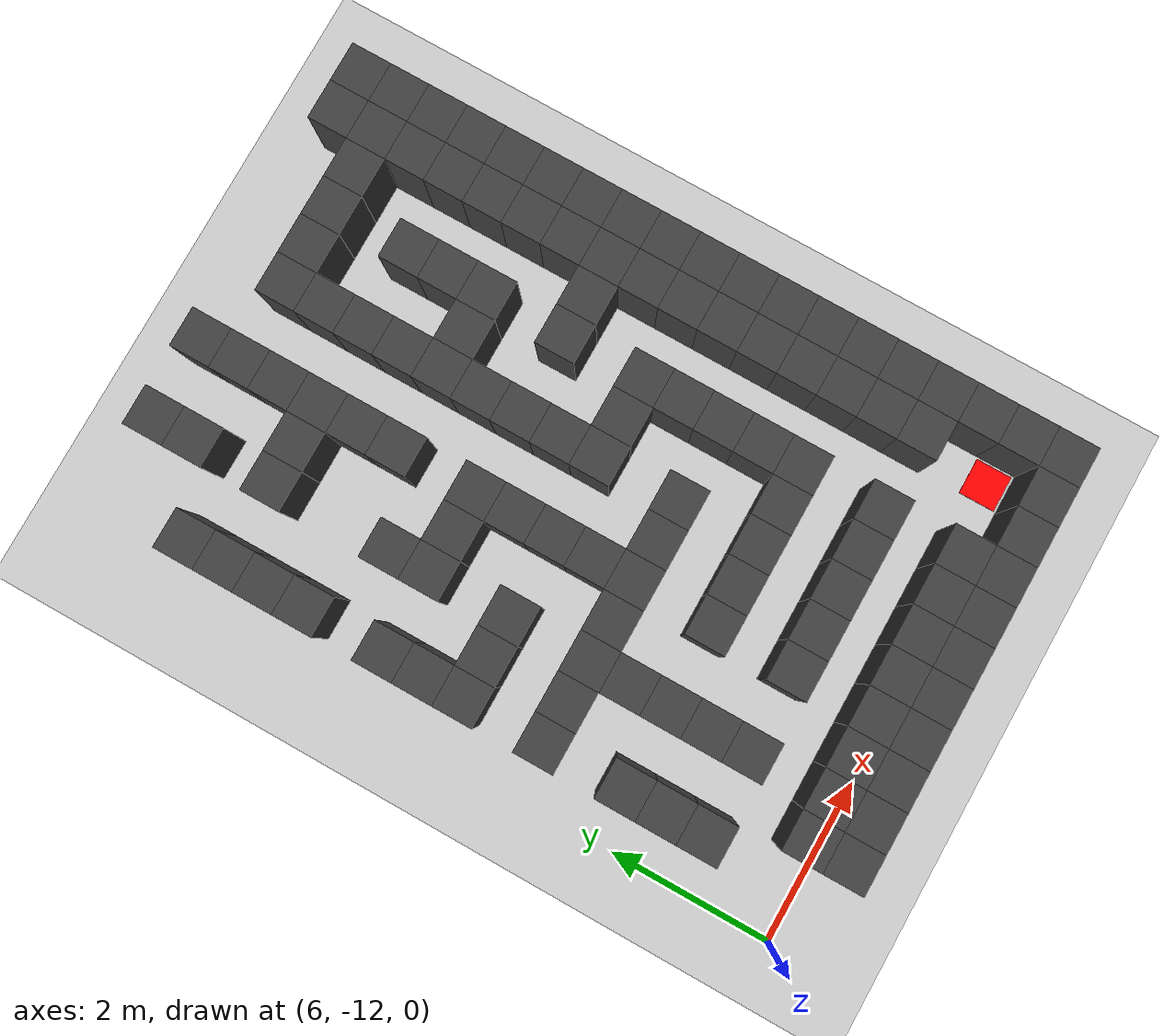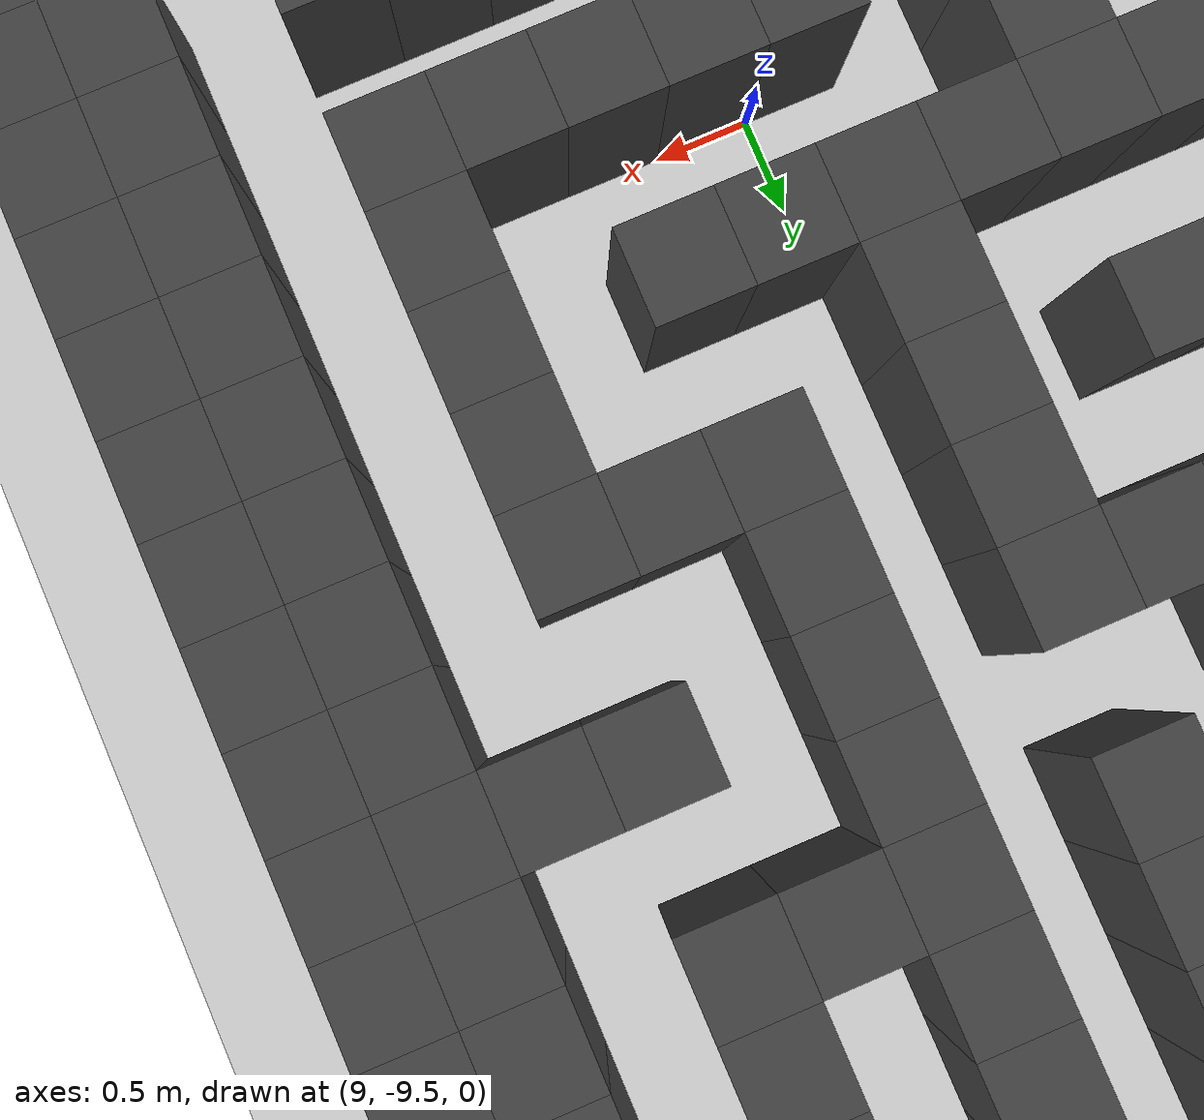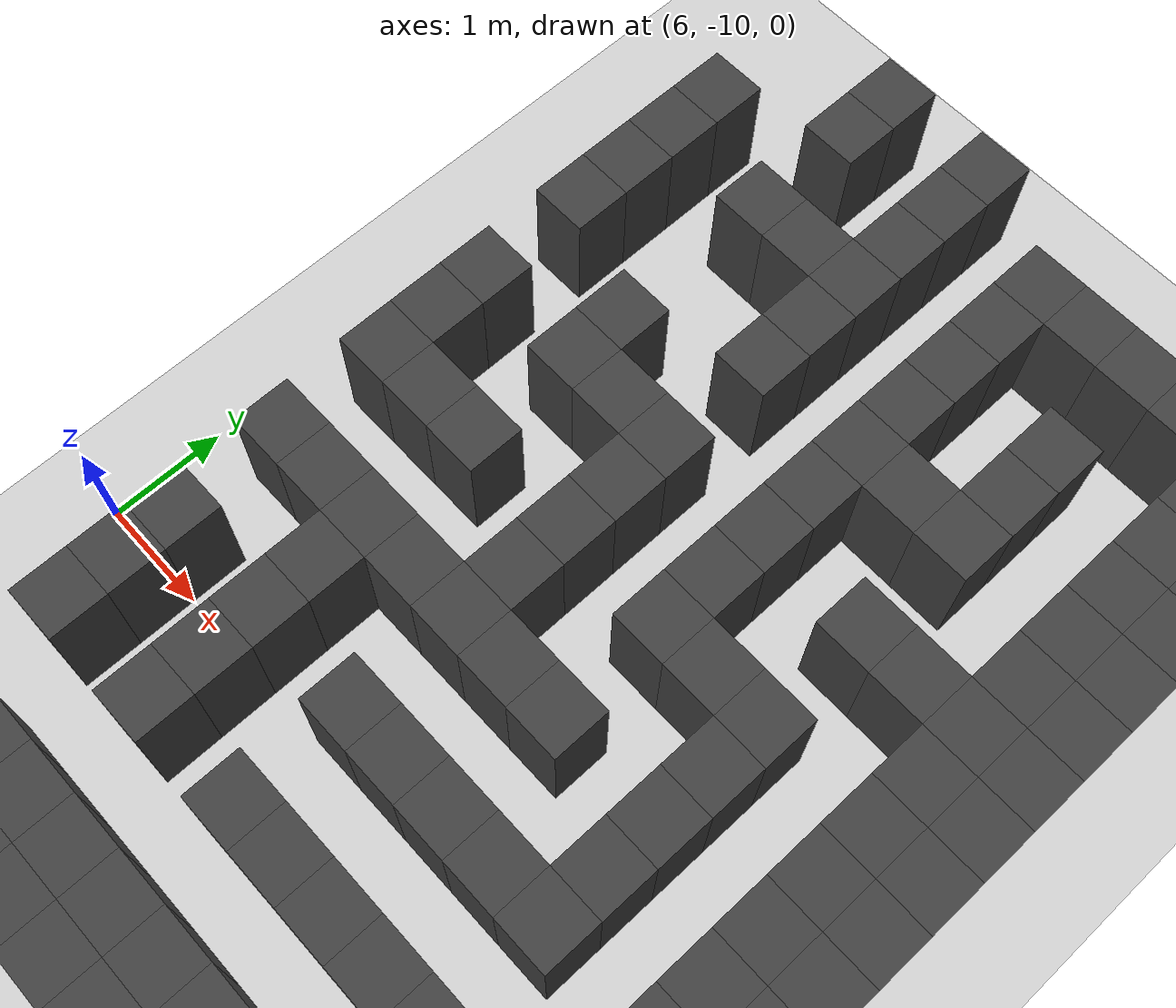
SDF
<sdf version="1.7">
 <world name="map_17508">
  <model name="ground_plane">
   <static>true</static>
   <link name="link">
    <collision name="collision">
     <geometry><plane><normal>0 0 1</normal><size>200 200</size></plane></geometry>
    </collision>
    <visual name="visual">
     <geometry><plane><normal>0 0 1</normal><size>200 200</size></plane></geometry>
     <material><ambient>0.8 0.8 0.8 1</ambient><diffuse>0.8 0.8 0.8 1</diffuse></material>
    </visual>
   </link>
  </model>
  <model name="maze_environment">
   <static>true</static>
   <link name="wall_781">
    <pose>7.750 -3.250 0.500 0 0 0</pose>
    <collision name="col"><geometry><box><size>0.5 0.5 1.0</size></box></geometry></collision>
    <visual name="vis">
     <geometry><box><size>0.5 0.5 1.0</size></box></geometry>
     <material><ambient>0.15 0.15 0.15 1</ambient><diffuse>0.25 0.25 0.25 1</diffuse></material>
    </visual>
   </link>
   <link name="wall_782">
    <pose>8.750 -3.250 0.500 0 0 0</pose>
    <collision name="col"><geometry><box><size>0.5 0.5 1.0</size></box></geometry></collision>
    <visual name="vis">
     <geometry><box><size>0.5 0.5 1.0</size></box></geometry>
     <material><ambient>0.15 0.15 0.15 1</ambient><diffuse>0.25 0.25 0.25 1</diffuse></material>
    </visual>
   </link>
   <link name="wall_783">
    <pose>11.750 -3.250 0.500 0 0 0</pose>
    <collision name="col"><geometry><box><size>0.5 0.5 1.0</size></box></geometry></collision>
    <visual name="vis">
     <geometry><box><size>0.5 0.5 1.0</size></box></geometry>
     <material><ambient>0.15 0.15 0.15 1</ambient><diffuse>0.25 0.25 0.25 1</diffuse></material>
    </visual>
   </link>
   <link name="wall_784">
    <pose>12.250 -3.250 0.500 0 0 0</pose>
    <collision name="col"><geometry><box><size>0.5 0.5 1.0</size></box></geometry></collision>
    <visual name="vis">
     <geometry><box><size>0.5 0.5 1.0</size></box></geometry>
     <material><ambient>0.15 0.15 0.15 1</ambient><diffuse>0.25 0.25 0.25 1</diffuse></material>
    </visual>
   </link>
   <link name="wall_809">
    <pose>7.750 -3.750 0.500 0 0 0</pose>
    <collision name="col"><geometry><box><size>0.5 0.5 1.0</size></box></geometry></collision>
    <visual name="vis">
     <geometry><box><size>0.5 0.5 1.0</size></box></geometry>
     <material><ambient>0.15 0.15 0.15 1</ambient><diffuse>0.25 0.25 0.25 1</diffuse></material>
    </visual>
   </link>
   <link name="wall_810">
    <pose>8.750 -3.750 0.500 0 0 0</pose>
    <collision name="col"><geometry><box><size>0.5 0.5 1.0</size></box></geometry></collision>
    <visual name="vis">
     <geometry><box><size>0.5 0.5 1.0</size></box></geometry>
     <material><ambient>0.15 0.15 0.15 1</ambient><diffuse>0.25 0.25 0.25 1</diffuse></material>
    </visual>
   </link>
   <link name="wall_811">
    <pose>9.750 -3.750 0.500 0 0 0</pose>
    <collision name="col"><geometry><box><size>0.5 0.5 1.0</size></box></geometry></collision>
    <visual name="vis">
     <geometry><box><size>0.5 0.5 1.0</size></box></geometry>
     <material><ambient>0.15 0.15 0.15 1</ambient><diffuse>0.25 0.25 0.25 1</diffuse></material>
    </visual>
   </link>
   <link name="wall_812">
    <pose>10.250 -3.750 0.500 0 0 0</pose>
    <collision name="col"><geometry><box><size>0.5 0.5 1.0</size></box></geometry></collision>
    <visual name="vis">
     <geometry><box><size>0.5 0.5 1.0</size></box></geometry>
     <material><ambient>0.15 0.15 0.15 1</ambient><diffuse>0.25 0.25 0.25 1</diffuse></material>
    </visual>
   </link>
   <link name="wall_813">
    <pose>10.750 -3.750 0.500 0 0 0</pose>
    <collision name="col"><geometry><box><size>0.5 0.5 1.0</size></box></geometry></collision>
    <visual name="vis">
     <geometry><box><size>0.5 0.5 1.0</size></box></geometry>
     <material><ambient>0.15 0.15 0.15 1</ambient><diffuse>0.25 0.25 0.25 1</diffuse></material>
    </visual>
   </link>
   <link name="wall_814">
    <pose>11.250 -3.750 0.500 0 0 0</pose>
    <collision name="col"><geometry><box><size>0.5 0.5 1.0</size></box></geometry></collision>
    <visual name="vis">
     <geometry><box><size>0.5 0.5 1.0</size></box></geometry>
     <material><ambient>0.15 0.15 0.15 1</ambient><diffuse>0.25 0.25 0.25 1</diffuse></material>
    </visual>
   </link>
   <link name="wall_815">
    <pose>11.750 -3.750 0.500 0 0 0</pose>
    <collision name="col"><geometry><box><size>0.5 0.5 1.0</size></box></geometry></collision>
    <visual name="vis">
     <geometry><box><size>0.5 0.5 1.0</size></box></geometry>
     <material><ambient>0.15 0.15 0.15 1</ambient><diffuse>0.25 0.25 0.25 1</diffuse></material>
    </visual>
   </link>
   <link name="wall_816">
    <pose>12.250 -3.750 0.500 0 0 0</pose>
    <collision name="col"><geometry><box><size>0.5 0.5 1.0</size></box></geometry></collision>
    <visual name="vis">
     <geometry><box><size>0.5 0.5 1.0</size></box></geometry>
     <material><ambient>0.15 0.15 0.15 1</ambient><diffuse>0.25 0.25 0.25 1</diffuse></material>
    </visual>
   </link>
   <link name="wall_828">
    <pose>6.750 -4.250 0.500 0 0 0</pose>
    <collision name="col"><geometry><box><size>0.5 0.5 1.0</size></box></geometry></collision>
    <visual name="vis">
     <geometry><box><size>0.5 0.5 1.0</size></box></geometry>
     <material><ambient>0.15 0.15 0.15 1</ambient><diffuse>0.25 0.25 0.25 1</diffuse></material>
    </visual>
   </link>
   <link name="wall_829">
    <pose>8.750 -4.250 0.500 0 0 0</pose>
    <collision name="col"><geometry><box><size>0.5 0.5 1.0</size></box></geometry></collision>
    <visual name="vis">
     <geometry><box><size>0.5 0.5 1.0</size></box></geometry>
     <material><ambient>0.15 0.15 0.15 1</ambient><diffuse>0.25 0.25 0.25 1</diffuse></material>
    </visual>
   </link>
   <link name="wall_830">
    <pose>9.750 -4.250 0.500 0 0 0</pose>
    <collision name="col"><geometry><box><size>0.5 0.5 1.0</size></box></geometry></collision>
    <visual name="vis">
     <geometry><box><size>0.5 0.5 1.0</size></box></geometry>
     <material><ambient>0.15 0.15 0.15 1</ambient><diffuse>0.25 0.25 0.25 1</diffuse></material>
    </visual>
   </link>
   <link name="wall_831">
    <pose>11.750 -4.250 0.500 0 0 0</pose>
    <collision name="col"><geometry><box><size>0.5 0.5 1.0</size></box></geometry></collision>
    <visual name="vis">
     <geometry><box><size>0.5 0.5 1.0</size></box></geometry>
     <material><ambient>0.15 0.15 0.15 1</ambient><diffuse>0.25 0.25 0.25 1</diffuse></material>
    </visual>
   </link>
   <link name="wall_832">
    <pose>12.250 -4.250 0.500 0 0 0</pose>
    <collision name="col"><geometry><box><size>0.5 0.5 1.0</size></box></geometry></collision>
    <visual name="vis">
     <geometry><box><size>0.5 0.5 1.0</size></box></geometry>
     <material><ambient>0.15 0.15 0.15 1</ambient><diffuse>0.25 0.25 0.25 1</diffuse></material>
    </visual>
   </link>
   <link name="wall_860">
    <pose>6.750 -4.750 0.500 0 0 0</pose>
    <collision name="col"><geometry><box><size>0.5 0.5 1.0</size></box></geometry></collision>
    <visual name="vis">
     <geometry><box><size>0.5 0.5 1.0</size></box></geometry>
     <material><ambient>0.15 0.15 0.15 1</ambient><diffuse>0.25 0.25 0.25 1</diffuse></material>
    </visual>
   </link>
   <link name="wall_861">
    <pose>7.750 -4.750 0.500 0 0 0</pose>
    <collision name="col"><geometry><box><size>0.5 0.5 1.0</size></box></geometry></collision>
    <visual name="vis">
     <geometry><box><size>0.5 0.5 1.0</size></box></geometry>
     <material><ambient>0.15 0.15 0.15 1</ambient><diffuse>0.25 0.25 0.25 1</diffuse></material>
    </visual>
   </link>
   <link name="wall_862">
    <pose>8.250 -4.750 0.500 0 0 0</pose>
    <collision name="col"><geometry><box><size>0.5 0.5 1.0</size></box></geometry></collision>
    <visual name="vis">
     <geometry><box><size>0.5 0.5 1.0</size></box></geometry>
     <material><ambient>0.15 0.15 0.15 1</ambient><diffuse>0.25 0.25 0.25 1</diffuse></material>
    </visual>
   </link>
   <link name="wall_863">
    <pose>8.750 -4.750 0.500 0 0 0</pose>
    <collision name="col"><geometry><box><size>0.5 0.5 1.0</size></box></geometry></collision>
    <visual name="vis">
     <geometry><box><size>0.5 0.5 1.0</size></box></geometry>
     <material><ambient>0.15 0.15 0.15 1</ambient><diffuse>0.25 0.25 0.25 1</diffuse></material>
    </visual>
   </link>
   <link name="wall_864">
    <pose>9.750 -4.750 0.500 0 0 0</pose>
    <collision name="col"><geometry><box><size>0.5 0.5 1.0</size></box></geometry></collision>
    <visual name="vis">
     <geometry><box><size>0.5 0.5 1.0</size></box></geometry>
     <material><ambient>0.15 0.15 0.15 1</ambient><diffuse>0.25 0.25 0.25 1</diffuse></material>
    </visual>
   </link>
   <link name="wall_865">
    <pose>10.750 -4.750 0.500 0 0 0</pose>
    <collision name="col"><geometry><box><size>0.5 0.5 1.0</size></box></geometry></collision>
    <visual name="vis">
     <geometry><box><size>0.5 0.5 1.0</size></box></geometry>
     <material><ambient>0.15 0.15 0.15 1</ambient><diffuse>0.25 0.25 0.25 1</diffuse></material>
    </visual>
   </link>
   <link name="wall_866">
    <pose>11.750 -4.750 0.500 0 0 0</pose>
    <collision name="col"><geometry><box><size>0.5 0.5 1.0</size></box></geometry></collision>
    <visual name="vis">
     <geometry><box><size>0.5 0.5 1.0</size></box></geometry>
     <material><ambient>0.15 0.15 0.15 1</ambient><diffuse>0.25 0.25 0.25 1</diffuse></material>
    </visual>
   </link>
   <link name="wall_867">
    <pose>12.250 -4.750 0.500 0 0 0</pose>
    <collision name="col"><geometry><box><size>0.5 0.5 1.0</size></box></geometry></collision>
    <visual name="vis">
     <geometry><box><size>0.5 0.5 1.0</size></box></geometry>
     <material><ambient>0.15 0.15 0.15 1</ambient><diffuse>0.25 0.25 0.25 1</diffuse></material>
    </visual>
   </link>
   <link name="wall_878">
    <pose>6.750 -5.250 0.500 0 0 0</pose>
    <collision name="col"><geometry><box><size>0.5 0.5 1.0</size></box></geometry></collision>
    <visual name="vis">
     <geometry><box><size>0.5 0.5 1.0</size></box></geometry>
     <material><ambient>0.15 0.15 0.15 1</ambient><diffuse>0.25 0.25 0.25 1</diffuse></material>
    </visual>
   </link>
   <link name="wall_879">
    <pose>8.750 -5.250 0.500 0 0 0</pose>
    <collision name="col"><geometry><box><size>0.5 0.5 1.0</size></box></geometry></collision>
    <visual name="vis">
     <geometry><box><size>0.5 0.5 1.0</size></box></geometry>
     <material><ambient>0.15 0.15 0.15 1</ambient><diffuse>0.25 0.25 0.25 1</diffuse></material>
    </visual>
   </link>
   <link name="wall_880">
    <pose>9.750 -5.250 0.500 0 0 0</pose>
    <collision name="col"><geometry><box><size>0.5 0.5 1.0</size></box></geometry></collision>
    <visual name="vis">
     <geometry><box><size>0.5 0.5 1.0</size></box></geometry>
     <material><ambient>0.15 0.15 0.15 1</ambient><diffuse>0.25 0.25 0.25 1</diffuse></material>
    </visual>
   </link>
   <link name="wall_881">
    <pose>10.750 -5.250 0.500 0 0 0</pose>
    <collision name="col"><geometry><box><size>0.5 0.5 1.0</size></box></geometry></collision>
    <visual name="vis">
     <geometry><box><size>0.5 0.5 1.0</size></box></geometry>
     <material><ambient>0.15 0.15 0.15 1</ambient><diffuse>0.25 0.25 0.25 1</diffuse></material>
    </visual>
   </link>
   <link name="wall_882">
    <pose>11.750 -5.250 0.500 0 0 0</pose>
    <collision name="col"><geometry><box><size>0.5 0.5 1.0</size></box></geometry></collision>
    <visual name="vis">
     <geometry><box><size>0.5 0.5 1.0</size></box></geometry>
     <material><ambient>0.15 0.15 0.15 1</ambient><diffuse>0.25 0.25 0.25 1</diffuse></material>
    </visual>
   </link>
   <link name="wall_883">
    <pose>12.250 -5.250 0.500 0 0 0</pose>
    <collision name="col"><geometry><box><size>0.5 0.5 1.0</size></box></geometry></collision>
    <visual name="vis">
     <geometry><box><size>0.5 0.5 1.0</size></box></geometry>
     <material><ambient>0.15 0.15 0.15 1</ambient><diffuse>0.25 0.25 0.25 1</diffuse></material>
    </visual>
   </link>
   <link name="wall_909">
    <pose>6.750 -5.750 0.500 0 0 0</pose>
    <collision name="col"><geometry><box><size>0.5 0.5 1.0</size></box></geometry></collision>
    <visual name="vis">
     <geometry><box><size>0.5 0.5 1.0</size></box></geometry>
     <material><ambient>0.15 0.15 0.15 1</ambient><diffuse>0.25 0.25 0.25 1</diffuse></material>
    </visual>
   </link>
   <link name="wall_910">
    <pose>8.750 -5.750 0.500 0 0 0</pose>
    <collision name="col"><geometry><box><size>0.5 0.5 1.0</size></box></geometry></collision>
    <visual name="vis">
     <geometry><box><size>0.5 0.5 1.0</size></box></geometry>
     <material><ambient>0.15 0.15 0.15 1</ambient><diffuse>0.25 0.25 0.25 1</diffuse></material>
    </visual>
   </link>
   <link name="wall_911">
    <pose>9.750 -5.750 0.500 0 0 0</pose>
    <collision name="col"><geometry><box><size>0.5 0.5 1.0</size></box></geometry></collision>
    <visual name="vis">
     <geometry><box><size>0.5 0.5 1.0</size></box></geometry>
     <material><ambient>0.15 0.15 0.15 1</ambient><diffuse>0.25 0.25 0.25 1</diffuse></material>
    </visual>
   </link>
   <link name="wall_912">
    <pose>10.250 -5.750 0.500 0 0 0</pose>
    <collision name="col"><geometry><box><size>0.5 0.5 1.0</size></box></geometry></collision>
    <visual name="vis">
     <geometry><box><size>0.5 0.5 1.0</size></box></geometry>
     <material><ambient>0.15 0.15 0.15 1</ambient><diffuse>0.25 0.25 0.25 1</diffuse></material>
    </visual>
   </link>
   <link name="wall_913">
    <pose>10.750 -5.750 0.500 0 0 0</pose>
    <collision name="col"><geometry><box><size>0.5 0.5 1.0</size></box></geometry></collision>
    <visual name="vis">
     <geometry><box><size>0.5 0.5 1.0</size></box></geometry>
     <material><ambient>0.15 0.15 0.15 1</ambient><diffuse>0.25 0.25 0.25 1</diffuse></material>
    </visual>
   </link>
   <link name="wall_914">
    <pose>11.750 -5.750 0.500 0 0 0</pose>
    <collision name="col"><geometry><box><size>0.5 0.5 1.0</size></box></geometry></collision>
    <visual name="vis">
     <geometry><box><size>0.5 0.5 1.0</size></box></geometry>
     <material><ambient>0.15 0.15 0.15 1</ambient><diffuse>0.25 0.25 0.25 1</diffuse></material>
    </visual>
   </link>
   <link name="wall_915">
    <pose>12.250 -5.750 0.500 0 0 0</pose>
    <collision name="col"><geometry><box><size>0.5 0.5 1.0</size></box></geometry></collision>
    <visual name="vis">
     <geometry><box><size>0.5 0.5 1.0</size></box></geometry>
     <material><ambient>0.15 0.15 0.15 1</ambient><diffuse>0.25 0.25 0.25 1</diffuse></material>
    </visual>
   </link>
   <link name="wall_928">
    <pose>7.750 -6.250 0.500 0 0 0</pose>
    <collision name="col"><geometry><box><size>0.5 0.5 1.0</size></box></geometry></collision>
    <visual name="vis">
     <geometry><box><size>0.5 0.5 1.0</size></box></geometry>
     <material><ambient>0.15 0.15 0.15 1</ambient><diffuse>0.25 0.25 0.25 1</diffuse></material>
    </visual>
   </link>
   <link name="wall_929">
    <pose>9.750 -6.250 0.500 0 0 0</pose>
    <collision name="col"><geometry><box><size>0.5 0.5 1.0</size></box></geometry></collision>
    <visual name="vis">
     <geometry><box><size>0.5 0.5 1.0</size></box></geometry>
     <material><ambient>0.15 0.15 0.15 1</ambient><diffuse>0.25 0.25 0.25 1</diffuse></material>
    </visual>
   </link>
   <link name="wall_930">
    <pose>11.750 -6.250 0.500 0 0 0</pose>
    <collision name="col"><geometry><box><size>0.5 0.5 1.0</size></box></geometry></collision>
    <visual name="vis">
     <geometry><box><size>0.5 0.5 1.0</size></box></geometry>
     <material><ambient>0.15 0.15 0.15 1</ambient><diffuse>0.25 0.25 0.25 1</diffuse></material>
    </visual>
   </link>
   <link name="wall_931">
    <pose>12.250 -6.250 0.500 0 0 0</pose>
    <collision name="col"><geometry><box><size>0.5 0.5 1.0</size></box></geometry></collision>
    <visual name="vis">
     <geometry><box><size>0.5 0.5 1.0</size></box></geometry>
     <material><ambient>0.15 0.15 0.15 1</ambient><diffuse>0.25 0.25 0.25 1</diffuse></material>
    </visual>
   </link>
   <link name="wall_957">
    <pose>6.750 -6.750 0.500 0 0 0</pose>
    <collision name="col"><geometry><box><size>0.5 0.5 1.0</size></box></geometry></collision>
    <visual name="vis">
     <geometry><box><size>0.5 0.5 1.0</size></box></geometry>
     <material><ambient>0.15 0.15 0.15 1</ambient><diffuse>0.25 0.25 0.25 1</diffuse></material>
    </visual>
   </link>
   <link name="wall_958">
    <pose>7.750 -6.750 0.500 0 0 0</pose>
    <collision name="col"><geometry><box><size>0.5 0.5 1.0</size></box></geometry></collision>
    <visual name="vis">
     <geometry><box><size>0.5 0.5 1.0</size></box></geometry>
     <material><ambient>0.15 0.15 0.15 1</ambient><diffuse>0.25 0.25 0.25 1</diffuse></material>
    </visual>
   </link>
   <link name="wall_959">
    <pose>8.250 -6.750 0.500 0 0 0</pose>
    <collision name="col"><geometry><box><size>0.5 0.5 1.0</size></box></geometry></collision>
    <visual name="vis">
     <geometry><box><size>0.5 0.5 1.0</size></box></geometry>
     <material><ambient>0.15 0.15 0.15 1</ambient><diffuse>0.25 0.25 0.25 1</diffuse></material>
    </visual>
   </link>
   <link name="wall_960">
    <pose>8.750 -6.750 0.500 0 0 0</pose>
    <collision name="col"><geometry><box><size>0.5 0.5 1.0</size></box></geometry></collision>
    <visual name="vis">
     <geometry><box><size>0.5 0.5 1.0</size></box></geometry>
     <material><ambient>0.15 0.15 0.15 1</ambient><diffuse>0.25 0.25 0.25 1</diffuse></material>
    </visual>
   </link>
   <link name="wall_961">
    <pose>9.750 -6.750 0.500 0 0 0</pose>
    <collision name="col"><geometry><box><size>0.5 0.5 1.0</size></box></geometry></collision>
    <visual name="vis">
     <geometry><box><size>0.5 0.5 1.0</size></box></geometry>
     <material><ambient>0.15 0.15 0.15 1</ambient><diffuse>0.25 0.25 0.25 1</diffuse></material>
    </visual>
   </link>
   <link name="wall_962">
    <pose>10.750 -6.750 0.500 0 0 0</pose>
    <collision name="col"><geometry><box><size>0.5 0.5 1.0</size></box></geometry></collision>
    <visual name="vis">
     <geometry><box><size>0.5 0.5 1.0</size></box></geometry>
     <material><ambient>0.15 0.15 0.15 1</ambient><diffuse>0.25 0.25 0.25 1</diffuse></material>
    </visual>
   </link>
   <link name="wall_963">
    <pose>11.250 -6.750 0.500 0 0 0</pose>
    <collision name="col"><geometry><box><size>0.5 0.5 1.0</size></box></geometry></collision>
    <visual name="vis">
     <geometry><box><size>0.5 0.5 1.0</size></box></geometry>
     <material><ambient>0.15 0.15 0.15 1</ambient><diffuse>0.25 0.25 0.25 1</diffuse></material>
    </visual>
   </link>
   <link name="wall_964">
    <pose>11.750 -6.750 0.500 0 0 0</pose>
    <collision name="col"><geometry><box><size>0.5 0.5 1.0</size></box></geometry></collision>
    <visual name="vis">
     <geometry><box><size>0.5 0.5 1.0</size></box></geometry>
     <material><ambient>0.15 0.15 0.15 1</ambient><diffuse>0.25 0.25 0.25 1</diffuse></material>
    </visual>
   </link>
   <link name="wall_965">
    <pose>12.250 -6.750 0.500 0 0 0</pose>
    <collision name="col"><geometry><box><size>0.5 0.5 1.0</size></box></geometry></collision>
    <visual name="vis">
     <geometry><box><size>0.5 0.5 1.0</size></box></geometry>
     <material><ambient>0.15 0.15 0.15 1</ambient><diffuse>0.25 0.25 0.25 1</diffuse></material>
    </visual>
   </link>
   <link name="wall_976">
    <pose>6.750 -7.250 0.500 0 0 0</pose>
    <collision name="col"><geometry><box><size>0.5 0.5 1.0</size></box></geometry></collision>
    <visual name="vis">
     <geometry><box><size>0.5 0.5 1.0</size></box></geometry>
     <material><ambient>0.15 0.15 0.15 1</ambient><diffuse>0.25 0.25 0.25 1</diffuse></material>
    </visual>
   </link>
   <link name="wall_977">
    <pose>8.750 -7.250 0.500 0 0 0</pose>
    <collision name="col"><geometry><box><size>0.5 0.5 1.0</size></box></geometry></collision>
    <visual name="vis">
     <geometry><box><size>0.5 0.5 1.0</size></box></geometry>
     <material><ambient>0.15 0.15 0.15 1</ambient><diffuse>0.25 0.25 0.25 1</diffuse></material>
    </visual>
   </link>
   <link name="wall_978">
    <pose>9.750 -7.250 0.500 0 0 0</pose>
    <collision name="col"><geometry><box><size>0.5 0.5 1.0</size></box></geometry></collision>
    <visual name="vis">
     <geometry><box><size>0.5 0.5 1.0</size></box></geometry>
     <material><ambient>0.15 0.15 0.15 1</ambient><diffuse>0.25 0.25 0.25 1</diffuse></material>
    </visual>
   </link>
   <link name="wall_979">
    <pose>11.750 -7.250 0.500 0 0 0</pose>
    <collision name="col"><geometry><box><size>0.5 0.5 1.0</size></box></geometry></collision>
    <visual name="vis">
     <geometry><box><size>0.5 0.5 1.0</size></box></geometry>
     <material><ambient>0.15 0.15 0.15 1</ambient><diffuse>0.25 0.25 0.25 1</diffuse></material>
    </visual>
   </link>
   <link name="wall_980">
    <pose>12.250 -7.250 0.500 0 0 0</pose>
    <collision name="col"><geometry><box><size>0.5 0.5 1.0</size></box></geometry></collision>
    <visual name="vis">
     <geometry><box><size>0.5 0.5 1.0</size></box></geometry>
     <material><ambient>0.15 0.15 0.15 1</ambient><diffuse>0.25 0.25 0.25 1</diffuse></material>
    </visual>
   </link>
   <link name="wall_1007">
    <pose>6.750 -7.750 0.500 0 0 0</pose>
    <collision name="col"><geometry><box><size>0.5 0.5 1.0</size></box></geometry></collision>
    <visual name="vis">
     <geometry><box><size>0.5 0.5 1.0</size></box></geometry>
     <material><ambient>0.15 0.15 0.15 1</ambient><diffuse>0.25 0.25 0.25 1</diffuse></material>
    </visual>
   </link>
   <link name="wall_1008">
    <pose>7.250 -7.750 0.500 0 0 0</pose>
    <collision name="col"><geometry><box><size>0.5 0.5 1.0</size></box></geometry></collision>
    <visual name="vis">
     <geometry><box><size>0.5 0.5 1.0</size></box></geometry>
     <material><ambient>0.15 0.15 0.15 1</ambient><diffuse>0.25 0.25 0.25 1</diffuse></material>
    </visual>
   </link>
   <link name="wall_1009">
    <pose>7.750 -7.750 0.500 0 0 0</pose>
    <collision name="col"><geometry><box><size>0.5 0.5 1.0</size></box></geometry></collision>
    <visual name="vis">
     <geometry><box><size>0.5 0.5 1.0</size></box></geometry>
     <material><ambient>0.15 0.15 0.15 1</ambient><diffuse>0.25 0.25 0.25 1</diffuse></material>
    </visual>
   </link>
   <link name="wall_1010">
    <pose>8.750 -7.750 0.500 0 0 0</pose>
    <collision name="col"><geometry><box><size>0.5 0.5 1.0</size></box></geometry></collision>
    <visual name="vis">
     <geometry><box><size>0.5 0.5 1.0</size></box></geometry>
     <material><ambient>0.15 0.15 0.15 1</ambient><diffuse>0.25 0.25 0.25 1</diffuse></material>
    </visual>
   </link>
   <link name="wall_1011">
    <pose>9.750 -7.750 0.500 0 0 0</pose>
    <collision name="col"><geometry><box><size>0.5 0.5 1.0</size></box></geometry></collision>
    <visual name="vis">
     <geometry><box><size>0.5 0.5 1.0</size></box></geometry>
     <material><ambient>0.15 0.15 0.15 1</ambient><diffuse>0.25 0.25 0.25 1</diffuse></material>
    </visual>
   </link>
   <link name="wall_1012">
    <pose>10.250 -7.750 0.500 0 0 0</pose>
    <collision name="col"><geometry><box><size>0.5 0.5 1.0</size></box></geometry></collision>
    <visual name="vis">
     <geometry><box><size>0.5 0.5 1.0</size></box></geometry>
     <material><ambient>0.15 0.15 0.15 1</ambient><diffuse>0.25 0.25 0.25 1</diffuse></material>
    </visual>
   </link>
   <link name="wall_1013">
    <pose>10.750 -7.750 0.500 0 0 0</pose>
    <collision name="col"><geometry><box><size>0.5 0.5 1.0</size></box></geometry></collision>
    <visual name="vis">
     <geometry><box><size>0.5 0.5 1.0</size></box></geometry>
     <material><ambient>0.15 0.15 0.15 1</ambient><diffuse>0.25 0.25 0.25 1</diffuse></material>
    </visual>
   </link>
   <link name="wall_1014">
    <pose>11.750 -7.750 0.500 0 0 0</pose>
    <collision name="col"><geometry><box><size>0.5 0.5 1.0</size></box></geometry></collision>
    <visual name="vis">
     <geometry><box><size>0.5 0.5 1.0</size></box></geometry>
     <material><ambient>0.15 0.15 0.15 1</ambient><diffuse>0.25 0.25 0.25 1</diffuse></material>
    </visual>
   </link>
   <link name="wall_1015">
    <pose>12.250 -7.750 0.500 0 0 0</pose>
    <collision name="col"><geometry><box><size>0.5 0.5 1.0</size></box></geometry></collision>
    <visual name="vis">
     <geometry><box><size>0.5 0.5 1.0</size></box></geometry>
     <material><ambient>0.15 0.15 0.15 1</ambient><diffuse>0.25 0.25 0.25 1</diffuse></material>
    </visual>
   </link>
   <link name="wall_1026">
    <pose>8.750 -8.250 0.500 0 0 0</pose>
    <collision name="col"><geometry><box><size>0.5 0.5 1.0</size></box></geometry></collision>
    <visual name="vis">
     <geometry><box><size>0.5 0.5 1.0</size></box></geometry>
     <material><ambient>0.15 0.15 0.15 1</ambient><diffuse>0.25 0.25 0.25 1</diffuse></material>
    </visual>
   </link>
   <link name="wall_1027">
    <pose>10.750 -8.250 0.500 0 0 0</pose>
    <collision name="col"><geometry><box><size>0.5 0.5 1.0</size></box></geometry></collision>
    <visual name="vis">
     <geometry><box><size>0.5 0.5 1.0</size></box></geometry>
     <material><ambient>0.15 0.15 0.15 1</ambient><diffuse>0.25 0.25 0.25 1</diffuse></material>
    </visual>
   </link>
   <link name="wall_1028">
    <pose>11.750 -8.250 0.500 0 0 0</pose>
    <collision name="col"><geometry><box><size>0.5 0.5 1.0</size></box></geometry></collision>
    <visual name="vis">
     <geometry><box><size>0.5 0.5 1.0</size></box></geometry>
     <material><ambient>0.15 0.15 0.15 1</ambient><diffuse>0.25 0.25 0.25 1</diffuse></material>
    </visual>
   </link>
   <link name="wall_1029">
    <pose>12.250 -8.250 0.500 0 0 0</pose>
    <collision name="col"><geometry><box><size>0.5 0.5 1.0</size></box></geometry></collision>
    <visual name="vis">
     <geometry><box><size>0.5 0.5 1.0</size></box></geometry>
     <material><ambient>0.15 0.15 0.15 1</ambient><diffuse>0.25 0.25 0.25 1</diffuse></material>
    </visual>
   </link>
   <link name="wall_1057">
    <pose>6.750 -8.750 0.500 0 0 0</pose>
    <collision name="col"><geometry><box><size>0.5 0.5 1.0</size></box></geometry></collision>
    <visual name="vis">
     <geometry><box><size>0.5 0.5 1.0</size></box></geometry>
     <material><ambient>0.15 0.15 0.15 1</ambient><diffuse>0.25 0.25 0.25 1</diffuse></material>
    </visual>
   </link>
   <link name="wall_1058">
    <pose>7.250 -8.750 0.500 0 0 0</pose>
    <collision name="col"><geometry><box><size>0.5 0.5 1.0</size></box></geometry></collision>
    <visual name="vis">
     <geometry><box><size>0.5 0.5 1.0</size></box></geometry>
     <material><ambient>0.15 0.15 0.15 1</ambient><diffuse>0.25 0.25 0.25 1</diffuse></material>
    </visual>
   </link>
   <link name="wall_1059">
    <pose>7.750 -8.750 0.500 0 0 0</pose>
    <collision name="col"><geometry><box><size>0.5 0.5 1.0</size></box></geometry></collision>
    <visual name="vis">
     <geometry><box><size>0.5 0.5 1.0</size></box></geometry>
     <material><ambient>0.15 0.15 0.15 1</ambient><diffuse>0.25 0.25 0.25 1</diffuse></material>
    </visual>
   </link>
   <link name="wall_1060">
    <pose>8.250 -8.750 0.500 0 0 0</pose>
    <collision name="col"><geometry><box><size>0.5 0.5 1.0</size></box></geometry></collision>
    <visual name="vis">
     <geometry><box><size>0.5 0.5 1.0</size></box></geometry>
     <material><ambient>0.15 0.15 0.15 1</ambient><diffuse>0.25 0.25 0.25 1</diffuse></material>
    </visual>
   </link>
   <link name="wall_1061">
    <pose>8.750 -8.750 0.500 0 0 0</pose>
    <collision name="col"><geometry><box><size>0.5 0.5 1.0</size></box></geometry></collision>
    <visual name="vis">
     <geometry><box><size>0.5 0.5 1.0</size></box></geometry>
     <material><ambient>0.15 0.15 0.15 1</ambient><diffuse>0.25 0.25 0.25 1</diffuse></material>
    </visual>
   </link>
   <link name="wall_1062">
    <pose>9.250 -8.750 0.500 0 0 0</pose>
    <collision name="col"><geometry><box><size>0.5 0.5 1.0</size></box></geometry></collision>
    <visual name="vis">
     <geometry><box><size>0.5 0.5 1.0</size></box></geometry>
     <material><ambient>0.15 0.15 0.15 1</ambient><diffuse>0.25 0.25 0.25 1</diffuse></material>
    </visual>
   </link>
   <link name="wall_1063">
    <pose>9.750 -8.750 0.500 0 0 0</pose>
    <collision name="col"><geometry><box><size>0.5 0.5 1.0</size></box></geometry></collision>
    <visual name="vis">
     <geometry><box><size>0.5 0.5 1.0</size></box></geometry>
     <material><ambient>0.15 0.15 0.15 1</ambient><diffuse>0.25 0.25 0.25 1</diffuse></material>
    </visual>
   </link>
   <link name="wall_1064">
    <pose>10.750 -8.750 0.500 0 0 0</pose>
    <collision name="col"><geometry><box><size>0.5 0.5 1.0</size></box></geometry></collision>
    <visual name="vis">
     <geometry><box><size>0.5 0.5 1.0</size></box></geometry>
     <material><ambient>0.15 0.15 0.15 1</ambient><diffuse>0.25 0.25 0.25 1</diffuse></material>
    </visual>
   </link>
   <link name="wall_1065">
    <pose>11.750 -8.750 0.500 0 0 0</pose>
    <collision name="col"><geometry><box><size>0.5 0.5 1.0</size></box></geometry></collision>
    <visual name="vis">
     <geometry><box><size>0.5 0.5 1.0</size></box></geometry>
     <material><ambient>0.15 0.15 0.15 1</ambient><diffuse>0.25 0.25 0.25 1</diffuse></material>
    </visual>
   </link>
   <link name="wall_1066">
    <pose>12.250 -8.750 0.500 0 0 0</pose>
    <collision name="col"><geometry><box><size>0.5 0.5 1.0</size></box></geometry></collision>
    <visual name="vis">
     <geometry><box><size>0.5 0.5 1.0</size></box></geometry>
     <material><ambient>0.15 0.15 0.15 1</ambient><diffuse>0.25 0.25 0.25 1</diffuse></material>
    </visual>
   </link>
   <link name="wall_1075">
    <pose>7.750 -9.250 0.500 0 0 0</pose>
    <collision name="col"><geometry><box><size>0.5 0.5 1.0</size></box></geometry></collision>
    <visual name="vis">
     <geometry><box><size>0.5 0.5 1.0</size></box></geometry>
     <material><ambient>0.15 0.15 0.15 1</ambient><diffuse>0.25 0.25 0.25 1</diffuse></material>
    </visual>
   </link>
   <link name="wall_1076">
    <pose>10.750 -9.250 0.500 0 0 0</pose>
    <collision name="col"><geometry><box><size>0.5 0.5 1.0</size></box></geometry></collision>
    <visual name="vis">
     <geometry><box><size>0.5 0.5 1.0</size></box></geometry>
     <material><ambient>0.15 0.15 0.15 1</ambient><diffuse>0.25 0.25 0.25 1</diffuse></material>
    </visual>
   </link>
   <link name="wall_1077">
    <pose>11.750 -9.250 0.500 0 0 0</pose>
    <collision name="col"><geometry><box><size>0.5 0.5 1.0</size></box></geometry></collision>
    <visual name="vis">
     <geometry><box><size>0.5 0.5 1.0</size></box></geometry>
     <material><ambient>0.15 0.15 0.15 1</ambient><diffuse>0.25 0.25 0.25 1</diffuse></material>
    </visual>
   </link>
   <link name="wall_1078">
    <pose>12.250 -9.250 0.500 0 0 0</pose>
    <collision name="col"><geometry><box><size>0.5 0.5 1.0</size></box></geometry></collision>
    <visual name="vis">
     <geometry><box><size>0.5 0.5 1.0</size></box></geometry>
     <material><ambient>0.15 0.15 0.15 1</ambient><diffuse>0.25 0.25 0.25 1</diffuse></material>
    </visual>
   </link>
   <link name="wall_1105">
    <pose>6.750 -9.750 0.500 0 0 0</pose>
    <collision name="col"><geometry><box><size>0.5 0.5 1.0</size></box></geometry></collision>
    <visual name="vis">
     <geometry><box><size>0.5 0.5 1.0</size></box></geometry>
     <material><ambient>0.15 0.15 0.15 1</ambient><diffuse>0.25 0.25 0.25 1</diffuse></material>
    </visual>
   </link>
   <link name="wall_1106">
    <pose>7.750 -9.750 0.500 0 0 0</pose>
    <collision name="col"><geometry><box><size>0.5 0.5 1.0</size></box></geometry></collision>
    <visual name="vis">
     <geometry><box><size>0.5 0.5 1.0</size></box></geometry>
     <material><ambient>0.15 0.15 0.15 1</ambient><diffuse>0.25 0.25 0.25 1</diffuse></material>
    </visual>
   </link>
   <link name="wall_1107">
    <pose>8.750 -9.750 0.500 0 0 0</pose>
    <collision name="col"><geometry><box><size>0.5 0.5 1.0</size></box></geometry></collision>
    <visual name="vis">
     <geometry><box><size>0.5 0.5 1.0</size></box></geometry>
     <material><ambient>0.15 0.15 0.15 1</ambient><diffuse>0.25 0.25 0.25 1</diffuse></material>
    </visual>
   </link>
   <link name="wall_1108">
    <pose>9.250 -9.750 0.500 0 0 0</pose>
    <collision name="col"><geometry><box><size>0.5 0.5 1.0</size></box></geometry></collision>
    <visual name="vis">
     <geometry><box><size>0.5 0.5 1.0</size></box></geometry>
     <material><ambient>0.15 0.15 0.15 1</ambient><diffuse>0.25 0.25 0.25 1</diffuse></material>
    </visual>
   </link>
   <link name="wall_1109">
    <pose>9.750 -9.750 0.500 0 0 0</pose>
    <collision name="col"><geometry><box><size>0.5 0.5 1.0</size></box></geometry></collision>
    <visual name="vis">
     <geometry><box><size>0.5 0.5 1.0</size></box></geometry>
     <material><ambient>0.15 0.15 0.15 1</ambient><diffuse>0.25 0.25 0.25 1</diffuse></material>
    </visual>
   </link>
   <link name="wall_1110">
    <pose>10.250 -9.750 0.500 0 0 0</pose>
    <collision name="col"><geometry><box><size>0.5 0.5 1.0</size></box></geometry></collision>
    <visual name="vis">
     <geometry><box><size>0.5 0.5 1.0</size></box></geometry>
     <material><ambient>0.15 0.15 0.15 1</ambient><diffuse>0.25 0.25 0.25 1</diffuse></material>
    </visual>
   </link>
   <link name="wall_1111">
    <pose>10.750 -9.750 0.500 0 0 0</pose>
    <collision name="col"><geometry><box><size>0.5 0.5 1.0</size></box></geometry></collision>
    <visual name="vis">
     <geometry><box><size>0.5 0.5 1.0</size></box></geometry>
     <material><ambient>0.15 0.15 0.15 1</ambient><diffuse>0.25 0.25 0.25 1</diffuse></material>
    </visual>
   </link>
   <link name="wall_1112">
    <pose>11.750 -9.750 0.500 0 0 0</pose>
    <collision name="col"><geometry><box><size>0.5 0.5 1.0</size></box></geometry></collision>
    <visual name="vis">
     <geometry><box><size>0.5 0.5 1.0</size></box></geometry>
     <material><ambient>0.15 0.15 0.15 1</ambient><diffuse>0.25 0.25 0.25 1</diffuse></material>
    </visual>
   </link>
   <link name="wall_1113">
    <pose>12.250 -9.750 0.500 0 0 0</pose>
    <collision name="col"><geometry><box><size>0.5 0.5 1.0</size></box></geometry></collision>
    <visual name="vis">
     <geometry><box><size>0.5 0.5 1.0</size></box></geometry>
     <material><ambient>0.15 0.15 0.15 1</ambient><diffuse>0.25 0.25 0.25 1</diffuse></material>
    </visual>
   </link>
   <link name="wall_1124">
    <pose>6.750 -10.250 0.500 0 0 0</pose>
    <collision name="col"><geometry><box><size>0.5 0.5 1.0</size></box></geometry></collision>
    <visual name="vis">
     <geometry><box><size>0.5 0.5 1.0</size></box></geometry>
     <material><ambient>0.15 0.15 0.15 1</ambient><diffuse>0.25 0.25 0.25 1</diffuse></material>
    </visual>
   </link>
   <link name="wall_1125">
    <pose>7.750 -10.250 0.500 0 0 0</pose>
    <collision name="col"><geometry><box><size>0.5 0.5 1.0</size></box></geometry></collision>
    <visual name="vis">
     <geometry><box><size>0.5 0.5 1.0</size></box></geometry>
     <material><ambient>0.15 0.15 0.15 1</ambient><diffuse>0.25 0.25 0.25 1</diffuse></material>
    </visual>
   </link>
   <link name="wall_1126">
    <pose>11.750 -10.250 0.500 0 0 0</pose>
    <collision name="col"><geometry><box><size>0.5 0.5 1.0</size></box></geometry></collision>
    <visual name="vis">
     <geometry><box><size>0.5 0.5 1.0</size></box></geometry>
     <material><ambient>0.15 0.15 0.15 1</ambient><diffuse>0.25 0.25 0.25 1</diffuse></material>
    </visual>
   </link>
   <link name="wall_1127">
    <pose>12.250 -10.250 0.500 0 0 0</pose>
    <collision name="col"><geometry><box><size>0.5 0.5 1.0</size></box></geometry></collision>
    <visual name="vis">
     <geometry><box><size>0.5 0.5 1.0</size></box></geometry>
     <material><ambient>0.15 0.15 0.15 1</ambient><diffuse>0.25 0.25 0.25 1</diffuse></material>
    </visual>
   </link>
   <link name="wall_1156">
    <pose>6.750 -10.750 0.500 0 0 0</pose>
    <collision name="col"><geometry><box><size>0.5 0.5 1.0</size></box></geometry></collision>
    <visual name="vis">
     <geometry><box><size>0.5 0.5 1.0</size></box></geometry>
     <material><ambient>0.15 0.15 0.15 1</ambient><diffuse>0.25 0.25 0.25 1</diffuse></material>
    </visual>
   </link>
   <link name="wall_1157">
    <pose>7.750 -10.750 0.500 0 0 0</pose>
    <collision name="col"><geometry><box><size>0.5 0.5 1.0</size></box></geometry></collision>
    <visual name="vis">
     <geometry><box><size>0.5 0.5 1.0</size></box></geometry>
     <material><ambient>0.15 0.15 0.15 1</ambient><diffuse>0.25 0.25 0.25 1</diffuse></material>
    </visual>
   </link>
   <link name="wall_1158">
    <pose>8.750 -10.750 0.500 0 0 0</pose>
    <collision name="col"><geometry><box><size>0.5 0.5 1.0</size></box></geometry></collision>
    <visual name="vis">
     <geometry><box><size>0.5 0.5 1.0</size></box></geometry>
     <material><ambient>0.15 0.15 0.15 1</ambient><diffuse>0.25 0.25 0.25 1</diffuse></material>
    </visual>
   </link>
   <link name="wall_1159">
    <pose>9.250 -10.750 0.500 0 0 0</pose>
    <collision name="col"><geometry><box><size>0.5 0.5 1.0</size></box></geometry></collision>
    <visual name="vis">
     <geometry><box><size>0.5 0.5 1.0</size></box></geometry>
     <material><ambient>0.15 0.15 0.15 1</ambient><diffuse>0.25 0.25 0.25 1</diffuse></material>
    </visual>
   </link>
   <link name="wall_1160">
    <pose>9.750 -10.750 0.500 0 0 0</pose>
    <collision name="col"><geometry><box><size>0.5 0.5 1.0</size></box></geometry></collision>
    <visual name="vis">
     <geometry><box><size>0.5 0.5 1.0</size></box></geometry>
     <material><ambient>0.15 0.15 0.15 1</ambient><diffuse>0.25 0.25 0.25 1</diffuse></material>
    </visual>
   </link>
   <link name="wall_1161">
    <pose>10.250 -10.750 0.500 0 0 0</pose>
    <collision name="col"><geometry><box><size>0.5 0.5 1.0</size></box></geometry></collision>
    <visual name="vis">
     <geometry><box><size>0.5 0.5 1.0</size></box></geometry>
     <material><ambient>0.15 0.15 0.15 1</ambient><diffuse>0.25 0.25 0.25 1</diffuse></material>
    </visual>
   </link>
   <link name="wall_1162">
    <pose>10.750 -10.750 0.500 0 0 0</pose>
    <collision name="col"><geometry><box><size>0.5 0.5 1.0</size></box></geometry></collision>
    <visual name="vis">
     <geometry><box><size>0.5 0.5 1.0</size></box></geometry>
     <material><ambient>0.15 0.15 0.15 1</ambient><diffuse>0.25 0.25 0.25 1</diffuse></material>
    </visual>
   </link>
   <link name="wall_1163">
    <pose>11.750 -10.750 0.500 0 0 0</pose>
    <collision name="col"><geometry><box><size>0.5 0.5 1.0</size></box></geometry></collision>
    <visual name="vis">
     <geometry><box><size>0.5 0.5 1.0</size></box></geometry>
     <material><ambient>0.15 0.15 0.15 1</ambient><diffuse>0.25 0.25 0.25 1</diffuse></material>
    </visual>
   </link>
   <link name="wall_1164">
    <pose>12.250 -10.750 0.500 0 0 0</pose>
    <collision name="col"><geometry><box><size>0.5 0.5 1.0</size></box></geometry></collision>
    <visual name="vis">
     <geometry><box><size>0.5 0.5 1.0</size></box></geometry>
     <material><ambient>0.15 0.15 0.15 1</ambient><diffuse>0.25 0.25 0.25 1</diffuse></material>
    </visual>
   </link>
   <link name="wall_1171">
    <pose>12.250 -11.250 0.500 0 0 0</pose>
    <collision name="col"><geometry><box><size>0.5 0.5 1.0</size></box></geometry></collision>
    <visual name="vis">
     <geometry><box><size>0.5 0.5 1.0</size></box></geometry>
     <material><ambient>0.15 0.15 0.15 1</ambient><diffuse>0.25 0.25 0.25 1</diffuse></material>
    </visual>
   </link>
   <link name="wall_1211">
    <pose>7.250 -11.750 0.500 0 0 0</pose>
    <collision name="col"><geometry><box><size>0.5 0.5 1.0</size></box></geometry></collision>
    <visual name="vis">
     <geometry><box><size>0.5 0.5 1.0</size></box></geometry>
     <material><ambient>0.15 0.15 0.15 1</ambient><diffuse>0.25 0.25 0.25 1</diffuse></material>
    </visual>
   </link>
   <link name="wall_1212">
    <pose>7.750 -11.750 0.500 0 0 0</pose>
    <collision name="col"><geometry><box><size>0.5 0.5 1.0</size></box></geometry></collision>
    <visual name="vis">
     <geometry><box><size>0.5 0.5 1.0</size></box></geometry>
     <material><ambient>0.15 0.15 0.15 1</ambient><diffuse>0.25 0.25 0.25 1</diffuse></material>
    </visual>
   </link>
   <link name="wall_1213">
    <pose>8.250 -11.750 0.500 0 0 0</pose>
    <collision name="col"><geometry><box><size>0.5 0.5 1.0</size></box></geometry></collision>
    <visual name="vis">
     <geometry><box><size>0.5 0.5 1.0</size></box></geometry>
     <material><ambient>0.15 0.15 0.15 1</ambient><diffuse>0.25 0.25 0.25 1</diffuse></material>
    </visual>
   </link>
   <link name="wall_1214">
    <pose>8.750 -11.750 0.500 0 0 0</pose>
    <collision name="col"><geometry><box><size>0.5 0.5 1.0</size></box></geometry></collision>
    <visual name="vis">
     <geometry><box><size>0.5 0.5 1.0</size></box></geometry>
     <material><ambient>0.15 0.15 0.15 1</ambient><diffuse>0.25 0.25 0.25 1</diffuse></material>
    </visual>
   </link>
   <link name="wall_1215">
    <pose>9.250 -11.750 0.500 0 0 0</pose>
    <collision name="col"><geometry><box><size>0.5 0.5 1.0</size></box></geometry></collision>
    <visual name="vis">
     <geometry><box><size>0.5 0.5 1.0</size></box></geometry>
     <material><ambient>0.15 0.15 0.15 1</ambient><diffuse>0.25 0.25 0.25 1</diffuse></material>
    </visual>
   </link>
   <link name="wall_1216">
    <pose>9.750 -11.750 0.500 0 0 0</pose>
    <collision name="col"><geometry><box><size>0.5 0.5 1.0</size></box></geometry></collision>
    <visual name="vis">
     <geometry><box><size>0.5 0.5 1.0</size></box></geometry>
     <material><ambient>0.15 0.15 0.15 1</ambient><diffuse>0.25 0.25 0.25 1</diffuse></material>
    </visual>
   </link>
   <link name="wall_1217">
    <pose>10.250 -11.750 0.500 0 0 0</pose>
    <collision name="col"><geometry><box><size>0.5 0.5 1.0</size></box></geometry></collision>
    <visual name="vis">
     <geometry><box><size>0.5 0.5 1.0</size></box></geometry>
     <material><ambient>0.15 0.15 0.15 1</ambient><diffuse>0.25 0.25 0.25 1</diffuse></material>
    </visual>
   </link>
   <link name="wall_1218">
    <pose>10.750 -11.750 0.500 0 0 0</pose>
    <collision name="col"><geometry><box><size>0.5 0.5 1.0</size></box></geometry></collision>
    <visual name="vis">
     <geometry><box><size>0.5 0.5 1.0</size></box></geometry>
     <material><ambient>0.15 0.15 0.15 1</ambient><diffuse>0.25 0.25 0.25 1</diffuse></material>
    </visual>
   </link>
   <link name="wall_1219">
    <pose>12.250 -11.750 0.500 0 0 0</pose>
    <collision name="col"><geometry><box><size>0.5 0.5 1.0</size></box></geometry></collision>
    <visual name="vis">
     <geometry><box><size>0.5 0.5 1.0</size></box></geometry>
     <material><ambient>0.15 0.15 0.15 1</ambient><diffuse>0.25 0.25 0.25 1</diffuse></material>
    </visual>
   </link>
   <link name="wall_1259">
    <pose>7.250 -12.250 0.500 0 0 0</pose>
    <collision name="col"><geometry><box><size>0.5 0.5 1.0</size></box></geometry></collision>
    <visual name="vis">
     <geometry><box><size>0.5 0.5 1.0</size></box></geometry>
     <material><ambient>0.15 0.15 0.15 1</ambient><diffuse>0.25 0.25 0.25 1</diffuse></material>
    </visual>
   </link>
   <link name="wall_1260">
    <pose>7.750 -12.250 0.500 0 0 0</pose>
    <collision name="col"><geometry><box><size>0.5 0.5 1.0</size></box></geometry></collision>
    <visual name="vis">
     <geometry><box><size>0.5 0.5 1.0</size></box></geometry>
     <material><ambient>0.15 0.15 0.15 1</ambient><diffuse>0.25 0.25 0.25 1</diffuse></material>
    </visual>
   </link>
   <link name="wall_1261">
    <pose>8.250 -12.250 0.500 0 0 0</pose>
    <collision name="col"><geometry><box><size>0.5 0.5 1.0</size></box></geometry></collision>
    <visual name="vis">
     <geometry><box><size>0.5 0.5 1.0</size></box></geometry>
     <material><ambient>0.15 0.15 0.15 1</ambient><diffuse>0.25 0.25 0.25 1</diffuse></material>
    </visual>
   </link>
   <link name="wall_1262">
    <pose>8.750 -12.250 0.500 0 0 0</pose>
    <collision name="col"><geometry><box><size>0.5 0.5 1.0</size></box></geometry></collision>
    <visual name="vis">
     <geometry><box><size>0.5 0.5 1.0</size></box></geometry>
     <material><ambient>0.15 0.15 0.15 1</ambient><diffuse>0.25 0.25 0.25 1</diffuse></material>
    </visual>
   </link>
   <link name="wall_1263">
    <pose>9.250 -12.250 0.500 0 0 0</pose>
    <collision name="col"><geometry><box><size>0.5 0.5 1.0</size></box></geometry></collision>
    <visual name="vis">
     <geometry><box><size>0.5 0.5 1.0</size></box></geometry>
     <material><ambient>0.15 0.15 0.15 1</ambient><diffuse>0.25 0.25 0.25 1</diffuse></material>
    </visual>
   </link>
   <link name="wall_1264">
    <pose>9.750 -12.250 0.500 0 0 0</pose>
    <collision name="col"><geometry><box><size>0.5 0.5 1.0</size></box></geometry></collision>
    <visual name="vis">
     <geometry><box><size>0.5 0.5 1.0</size></box></geometry>
     <material><ambient>0.15 0.15 0.15 1</ambient><diffuse>0.25 0.25 0.25 1</diffuse></material>
    </visual>
   </link>
   <link name="wall_1265">
    <pose>10.250 -12.250 0.500 0 0 0</pose>
    <collision name="col"><geometry><box><size>0.5 0.5 1.0</size></box></geometry></collision>
    <visual name="vis">
     <geometry><box><size>0.5 0.5 1.0</size></box></geometry>
     <material><ambient>0.15 0.15 0.15 1</ambient><diffuse>0.25 0.25 0.25 1</diffuse></material>
    </visual>
   </link>
   <link name="wall_1266">
    <pose>10.750 -12.250 0.500 0 0 0</pose>
    <collision name="col"><geometry><box><size>0.5 0.5 1.0</size></box></geometry></collision>
    <visual name="vis">
     <geometry><box><size>0.5 0.5 1.0</size></box></geometry>
     <material><ambient>0.15 0.15 0.15 1</ambient><diffuse>0.25 0.25 0.25 1</diffuse></material>
    </visual>
   </link>
   <link name="wall_1267">
    <pose>11.250 -12.250 0.500 0 0 0</pose>
    <collision name="col"><geometry><box><size>0.5 0.5 1.0</size></box></geometry></collision>
    <visual name="vis">
     <geometry><box><size>0.5 0.5 1.0</size></box></geometry>
     <material><ambient>0.15 0.15 0.15 1</ambient><diffuse>0.25 0.25 0.25 1</diffuse></material>
    </visual>
   </link>
   <link name="wall_1268">
    <pose>11.750 -12.250 0.500 0 0 0</pose>
    <collision name="col"><geometry><box><size>0.5 0.5 1.0</size></box></geometry></collision>
    <visual name="vis">
     <geometry><box><size>0.5 0.5 1.0</size></box></geometry>
     <material><ambient>0.15 0.15 0.15 1</ambient><diffuse>0.25 0.25 0.25 1</diffuse></material>
    </visual>
   </link>
   <link name="wall_1269">
    <pose>12.250 -12.250 0.500 0 0 0</pose>
    <collision name="col"><geometry><box><size>0.5 0.5 1.0</size></box></geometry></collision>
    <visual name="vis">
     <geometry><box><size>0.5 0.5 1.0</size></box></geometry>
     <material><ambient>0.15 0.15 0.15 1</ambient><diffuse>0.25 0.25 0.25 1</diffuse></material>
    </visual>
   </link>
   <link name="goal_zone">
    <pose>11.750 -11.750 0.005 0 0 0</pose>
    <visual name="vis">
     <geometry><box><size>0.45 0.45 0.01</size></box></geometry>
     <material>
      <ambient>1.0 0.0 0.0 1</ambient>
      <diffuse>1.0 0.0 0.0 1</diffuse>
      <emissive>0.60 0.00 0.00 1</emissive>
     </material>
    </visual>
   </link>
  </model>
 </world>
</sdf>
